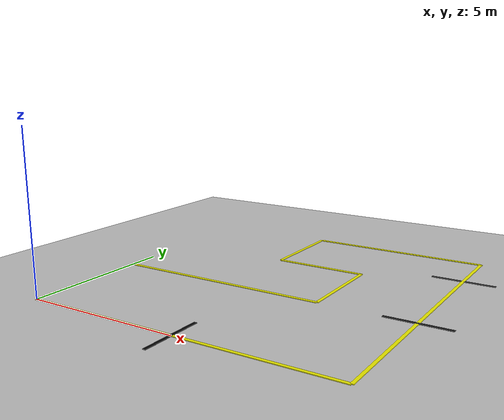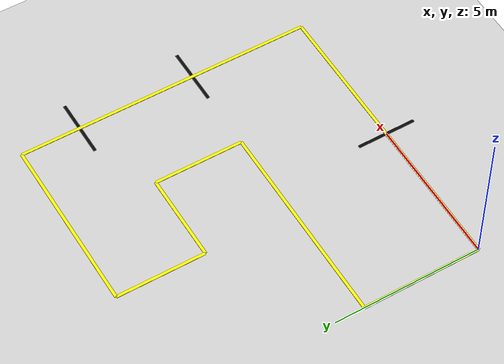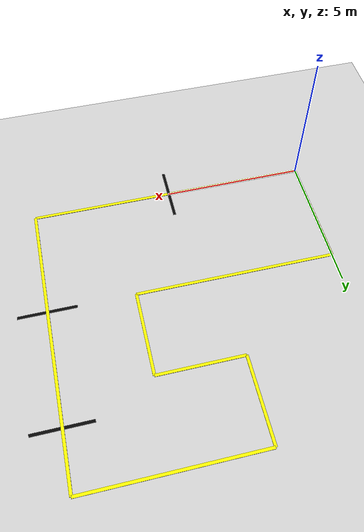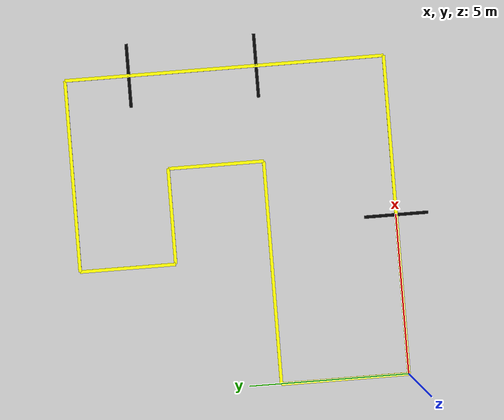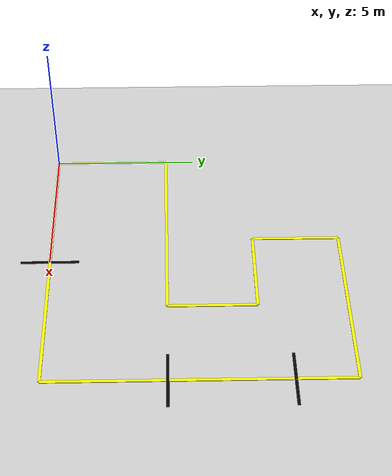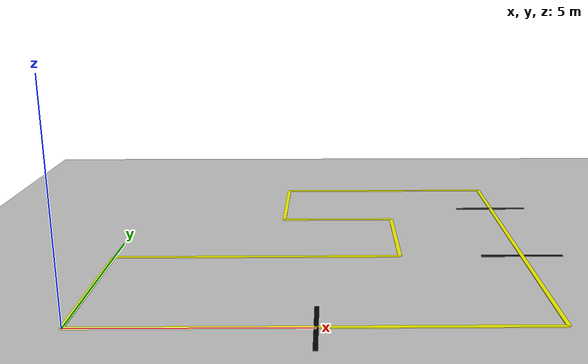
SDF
<sdf version="1.6">
 <world name="default">
  <plugin filename="gz-sim-physics-system" name="gz::sim::systems::Physics"/>
  <plugin filename="gz-sim-user-commands-system" name="gz::sim::systems::UserCommands"/>
  <plugin filename="gz-sim-scene-broadcaster-system" name="gz::sim::systems::SceneBroadcaster"/>
  <plugin filename="gz-sim-sensors-system" name="gz::sim::systems::Sensors">
   <render_engine>ogre2</render_engine>
  </plugin>
  <plugin filename="gz-sim-imu-system" name="gz::sim::systems::Imu"/>
  <include><uri>https://fuel.gazebosim.org/1.0/OpenRobotics/models/Ground Plane</uri></include>
  <include><uri>https://fuel.gazebosim.org/1.0/OpenRobotics/models/Sun</uri></include>
  <model name="black_line_track">
   <static>true</static>
   <link name="track_link">
    <visual name="base_horizontal">
     <pose>5 0 0.01 0 0 0</pose>
     <geometry><box><size>10 0.1 0.02</size></box></geometry>
     <material><ambient>1 1 0 1</ambient></material>
    </visual>
    <visual name="right_vertical">
     <pose>10 5 0.01 0 0 1.5708</pose>
     <geometry><box><size>10 0.1 0.02</size></box></geometry>
     <material><ambient>1 1 0 1</ambient></material>
    </visual>
    <visual name="top_horizontal">
     <pose>7 10 0.01 0 0 0</pose>
     <geometry><box><size>6 0.1 0.02</size></box></geometry>
     <material><ambient>1 1 0 1</ambient></material>
    </visual>
    <visual name="inner_vertical1">
     <pose>4 8.5 0.01 0 0 1.5708</pose>
     <geometry><box><size>3 0.1 0.02</size></box></geometry>
     <material><ambient>1 1 0 1</ambient></material>
    </visual>
    <visual name="inner_horizontal">
     <pose>5.5 7 0.01 0 0 0</pose>
     <geometry><box><size>3 0.1 0.02</size></box></geometry>
     <material><ambient>1 1 0 1</ambient></material>
    </visual>
    <visual name="inner_vertical2">
     <pose>7 5.5 0.01 0 0 1.5708</pose>
     <geometry><box><size>3 0.1 0.02</size></box></geometry>
     <material><ambient>1 1 0 1</ambient></material>
    </visual>
    <visual name="lower_horizontal">
     <pose>3.5 4 0.01 0 0 0</pose>
     <geometry><box><size>7 0.1 0.02</size></box></geometry>
     <material><ambient>1 1 0 1</ambient></material>
    </visual>
    <visual name="final_vertical">
     <pose>0 2 0.01 0 0 1.5708</pose>
     <geometry><box><size>4 0.1 0.02</size></box></geometry>
     <material><ambient>1 1 0 1</ambient></material>
    </visual>
    <visual name="intersection_1">
     <pose>5 0 0.01 0 0 1.5708</pose>
     <geometry><box><size>2 0.1 0.02</size></box></geometry>
     <material><ambient>0.02 0.02 0.02 1</ambient><diffuse>0.02 0.02 0.02 1</diffuse></material>
    </visual>
    <visual name="intersection_2">
     <pose>10 4 0.01 0 0 0</pose>
     <geometry><box><size>2 0.1 0.02</size></box></geometry>
     <material><ambient>0.02 0.02 0.02 1</ambient><diffuse>0.02 0.02 0.02 1</diffuse></material>
    </visual>
    <visual name="intersection_3">
     <pose>10 8 0.01 0 0 0</pose>
     <geometry><box><size>2 0.1 0.02</size></box></geometry>
     <material><ambient>0.02 0.02 0.02 1</ambient><diffuse>0.02 0.02 0.02 1</diffuse></material>
    </visual>
   </link>
  </model>
  <scene><shadows>false</shadows></scene>
  <physics type="ode">
   <real_time_update_rate>1000.0</real_time_update_rate>
   <max_step_size>0.001</max_step_size>
   <real_time_factor>1</real_time_factor>
   <ode>
    <solver>
     <type>quick</type>
     <iters>150</iters>
     <precon_iters>0</precon_iters>
     <sor>1.400000</sor>
     <use_dynamic_moi_rescaling>1</use_dynamic_moi_rescaling>
    </solver>
    <constraints>
     <cfm>0.00001</cfm>
     <erp>0.2</erp>
     <contact_max_correcting_vel>2000.000000</contact_max_correcting_vel>
     <contact_surface_layer>0.01000</contact_surface_layer>
    </constraints>
   </ode>
  </physics>
 </world>
</sdf>
